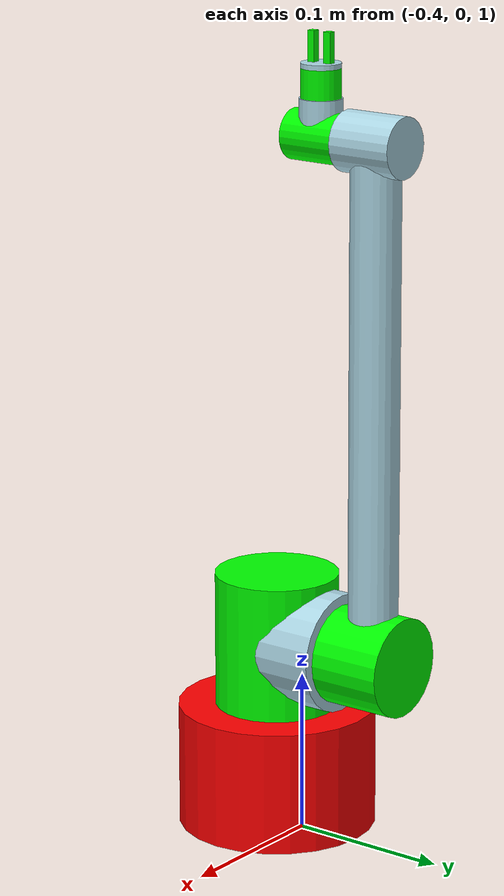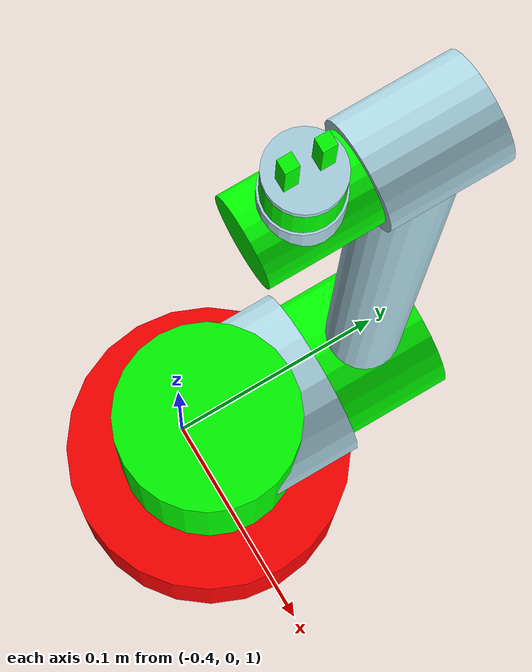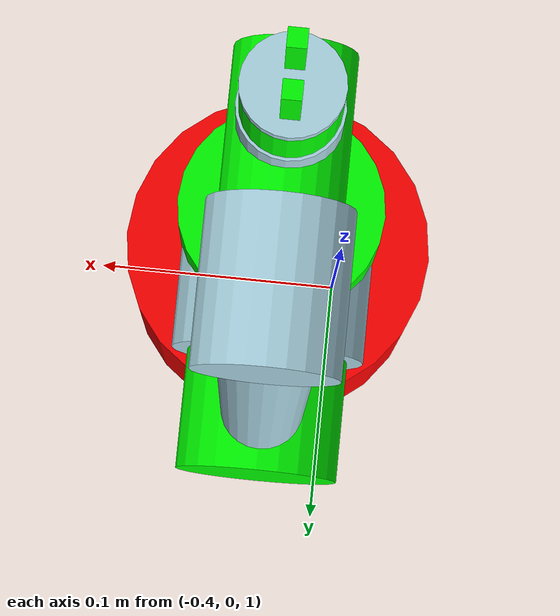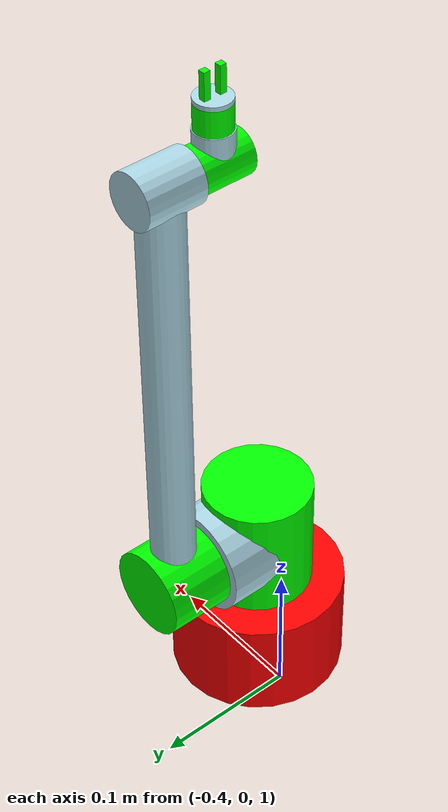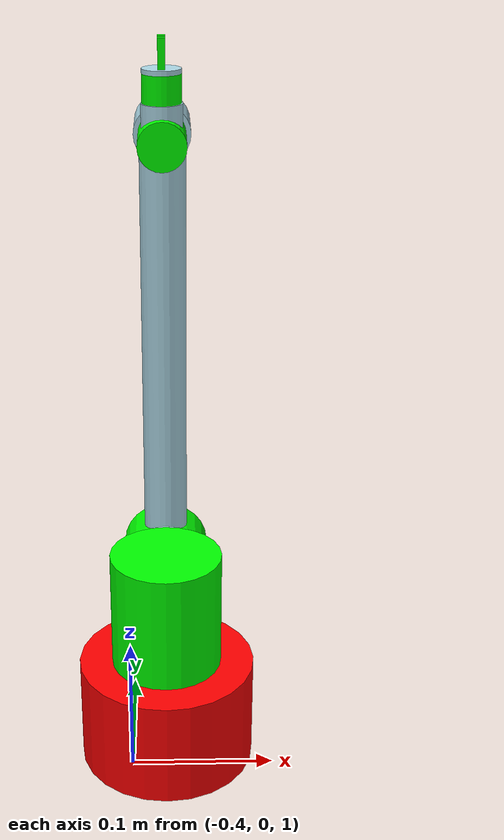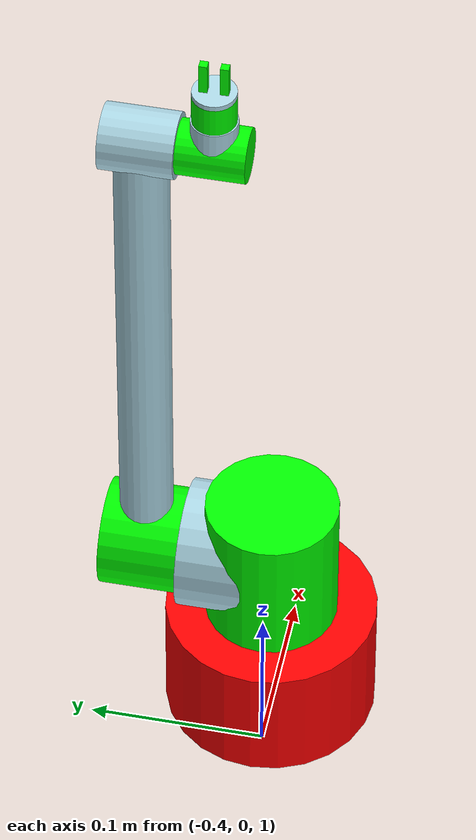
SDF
<?xml version="1.0" ?>
<sdf version="1.8">
  <world name="two_joint_arm_world">

    <!-- LIGHT -->

    <light type="directional" name="sun">
        <cast_shadows>true</cast_shadows>
        <pose>0 0 10 0 0 0</pose>
        <diffuse>0.8 0.8 0.8 1</diffuse>
        <specular>0.2 0.2 0.2 1</specular>
        <attenuation>
            <range>1000</range>
            <constant>0.9</constant>
            <linear>0.01</linear>
            <quadratic>0.001</quadratic>
        </attenuation>
        <direction>-0.5 0.1 -0.9</direction>
    </light>

                            <!--      MODELS      -->

                        <!--      Ground Plane      -->

    <!-- Ground Plane -->
    <model name="ground_plane">
      <static>true</static>
      <link name="link">
        <collision name="collision">
          <geometry>
            <plane>
              <normal>0 0 1</normal>
              <size>10 10</size>
            </plane>
          </geometry>
        </collision>
        <visual name="visual">
          <geometry>
            <plane>
              <normal>0 0 1</normal>
              <size>10 10</size>
            </plane>
          </geometry>

          <!-- COLOR!-->
          <material>
            <ambient>0.8 0.8 0.8 1</ambient>
            <diffuse>0.8 0.8 0.8 1</diffuse>
            <specular>0.5 0.5 0.5 1</specular>
          </material>
        </visual>
      </link>
    </model>

                            <!-- Robotic Arm Model -->

    <model name="two_joint_arm">

      <plugin
        filename="libignition-gazebo-joint-controller-system.so"
        name="ignition::gazebo::systems::JointController">
        <joint_name>joint0</joint_name>
        <topic>/two_joint_arm/joint0/pos_eff</topic>
      </plugin>

      <plugin
        filename="libignition-gazebo-joint-controller-system.so"
        name="ignition::gazebo::systems::JointController">
        <joint_name>joint1</joint_name>
        <topic>/two_joint_arm/joint1/pos_eff</topic>
      </plugin>

      <plugin
        filename="libignition-gazebo-joint-controller-system.so"
        name="ignition::gazebo::systems::JointController">
        <joint_name>joint2</joint_name>
        <topic>/two_joint_arm/joint2/pos_eff</topic>
      </plugin>

      <plugin
        filename="libignition-gazebo-joint-controller-system.so"
        name="ignition::gazebo::systems::JointController">
        <joint_name>right_finger_joint</joint_name>
        <topic>/two_joint_arm/right_finger_joint/pos_eff</topic>
      </plugin>

      <plugin
        filename="libignition-gazebo-joint-controller-system.so"
        name="ignition::gazebo::systems::JointController">
        <joint_name>left_finger_joint</joint_name>
        <topic>/two_joint_arm/left_finger_joint/pos_eff</topic>
      </plugin>

      <!-- LINK POSE  5Hz, dynamic-->

      <plugin
        filename="libignition-gazebo-pose-publisher-system.so"
        name="ignition::gazebo::systems::PosePublisher">
        <publish_link_pose>true</publish_link_pose>
        <update_frequency>0.5</update_frequency>
      </plugin>

      <!-- JOINT DATA IN RADIAN-->
      <plugin
        filename="libignition-gazebo-joint-state-publisher-system.so"
        name="ignition::gazebo::systems::JointStatePublisher">
      </plugin>

                                <!-- Arm Links -->

                                <!-- BASE LINK -->

      <!-- Base Link -->
      <link name="base_link">

        <pose>-0.375 0 1.0525 0 0 1.57079632679</pose>

        <collision name="base_collision">
          <geometry>
            <cylinder>
              <radius>0.06</radius> <!-- 12 cm diameter -->
              <length>0.075</length> <!-- 7.5 cm length -->
            </cylinder>
          </geometry>
        </collision>

        <visual name="base_visual">
          <geometry>
            <cylinder>
              <radius>0.06</radius>
              <length>0.075</length>
            </cylinder>
          </geometry>

          <!-- COLOR!-->
          <material>
            <ambient>1.0 0.0 0.0 1</ambient>
            <diffuse>1.0 0.0 0.0 1</diffuse>
            <specular>1.0 0.0 0.0 1</specular>
          </material>
        </visual>

        <inertial>
          <mass>100</mass>
          <inertia>
            <ixx>0.136875</ixx>
            <ixy>0</ixy>
            <ixz>0</ixz>
            <iyy>0.136875</iyy>
            <iyz>0</iyz>
            <izz>0.18</izz>
          </inertia>
        </inertial>
      </link>

                            <!-- Motor 0 link -->

      <link name="motor0">

        <pose relative_to="base_link">0 0 0.07875 0 0 0</pose>

        <!-- COLLISION -->
        <collision name="motor0_collision">
            <geometry>
                <cylinder>
                    <radius>0.0375</radius>
                    <length>0.0825</length>
                </cylinder>
            </geometry>
        </collision>

        <!-- VISUAL -->
        <visual name="motor0_visual">
            <geometry>
                <cylinder>
                    <radius>0.0375</radius> <!-- 6.5 cm diameter -->
                    <length>0.0825</length> <!-- 7.15 cm height -->
                </cylinder>
            </geometry>
            <material>
                <ambient>0.0 1.0 0.0 1</ambient> <!-- Green -->
                <diffuse>0.0 1.0 0.0 1</diffuse> <!-- Green -->
                <specular>1.0 1.0 1.0 1</specular>
            </material>
        </visual>
        <inertial>
            <mass>10</mass>
            <inertia>
                <ixx>0.0001709375</ixx>
                <ixy>0</ixy>
                <ixz>0</ixz>
                <iyy>0.0001709375</iyy>
                <iyz>0</iyz>
                <izz>0.0003125</izz>
              </inertia>
        </inertial>
      </link>

                            <!-- Motor 1 link -->

      <link name="motor1">

        <pose relative_to="segment0">0 0 0.04125 0 0 0</pose>

        <!-- COLLISION -->
        <collision name="motor1_collision">
            <geometry>
                <cylinder>
                    <radius>0.030</radius>
                    <length>0.045</length>
                </cylinder>
            </geometry>
        </collision>

        <!-- VISUAL -->
        <visual name="motor1_visual">
            <geometry>
                <cylinder>
                    <radius>0.030</radius> <!-- 4 cm diameter -->
                    <length>0.045</length> <!-- 3 cm length -->
                </cylinder>
            </geometry>
            <material>
                <ambient>0.0 1.0 0.0 1</ambient> <!-- Green -->
                <diffuse>0.0 1.0 0.0 1</diffuse> <!-- Green -->
                <specular>1.0 1.0 1.0 1</specular>
            </material>
        </visual>
        <inertial>
            <mass>1</mass>
            <inertia>
                <ixx>0.0002291666667</ixx>
                <ixy>0</ixy>
                <ixz>0</ixz>
                <iyy>0.0002291666667</iyy>
                <iyz>0</iyz>
                <izz>0.0001</izz>
            </inertia>
        </inertial>
      </link>

                              <!-- Motor 2 Link-->

      <link name="motor2">

        <pose relative_to="segment2">0 0 0.0390 0 0 0</pose>

        <!-- COLLISION -->
        <collision name="motor2_collision">
            <geometry>
                <cylinder>
                    <radius>0.015</radius>
                    <length>0.0375</length>
                </cylinder>
            </geometry>
        </collision>

        <!-- VISUAL -->
        <visual name="motor2_visual">
            <geometry>
                <cylinder>
                    <radius>0.015</radius> <!-- 2 cm diameter -->
                    <length>0.0375</length> <!-- 2.5 cm height -->
                </cylinder>
            </geometry>
            <material>
                <ambient>0.0 1.0 0.0 1</ambient> <!-- Green -->
                <diffuse>0.0 1.0 0.0 1</diffuse> <!-- Green -->
                <specular>1.0 1.0 1.0 1</specular>
            </material>
        </visual>
        <inertial>
          <mass>0.1</mass>
          <inertia>
              <ixx>0.00013125</ixx>
              <ixy>0</ixy>
              <ixz>0</ixz>
              <iyy>0.00013125</iyy>
              <iyz>0</iyz>
              <izz>0.0000025</izz>
          </inertia>
        </inertial>
      </link>

                            <!-- Motor 4 Link-->

      <link name="motor4">

        <pose relative_to="segment5">0 0 0.015 0 0 0</pose>

        <!-- COLLISION -->
        <collision name="motor4_collision">
            <geometry>
                <cylinder>
                    <radius>0.012</radius>
                    <length>0.0195</length>
                </cylinder>
            </geometry>
        </collision>

        <!-- VISUAL -->
        <visual name="motor4_visual">
            <geometry>
                <cylinder>
                    <radius>0.012</radius> <!-- 1.6 cm diameter -->
                    <length>0.0195</length> <!-- 1.3 cm height -->
                </cylinder>
            </geometry>
            <material>
                <ambient>0.0 1.0 0.0 1</ambient> <!-- Green -->
                <diffuse>0.0 1.0 0.0 1</diffuse> <!-- Green -->
                <specular>1.0 1.0 1.0 1</specular>
            </material>
        </visual>
        <inertial>
          <mass>0.1</mass>
          <inertia>
              <ixx>0.00013125</ixx>
              <ixy>0</ixy>
              <ixz>0</ixz>
              <iyy>0.00013125</iyy>
              <iyz>0</iyz>
              <izz>0.0000025</izz>
          </inertia>
        </inertial>
      </link>

                    <!-- CUSTOM SIMPLE GRIPPER -->

                      <!-- right finger Link -->

      <link name="right_finger">

        <pose relative_to="segment6">0.005625 0 0.00975 0 0 0</pose> <!-- Adjusted Z to account for half the height of the cuboid -->

        <!-- COLLISION -->
        <collision name="right_finger_collision">
            <geometry>
                <box>
                    <size>0.0045 0.0045 0.0195</size> <!-- 4 times taller than wide -->
                </box>
            </geometry>
        </collision>

        <!-- VISUAL -->
        <visual name="right_finger_visual">
            <geometry>
                <box>
                    <size>0.0045 0.0045 0.0195</size>
                </box>
            </geometry>
            <material>
                <ambient>0.0 1.0 0.0 1</ambient> <!-- Green -->
                <diffuse>0.0 1.0 0.0 1</diffuse> <!-- Green -->
                <specular>1.0 1.0 1.0 1</specular>
            </material>
        </visual>

        <inertial>
          <mass>0.1</mass>
          <!-- The inertia tensor values would need to be recalculated for the box shape. The values below are placeholders. -->
          <inertia>
              <ixx>0.00013125</ixx>
              <ixy>0</ixy>
              <ixz>0</ixz>
              <iyy>0.00013125</iyy>
              <iyz>0</iyz>
              <izz>0.0000025</izz>
          </inertia>
        </inertial>
      </link>

                      <!-- left finger Link -->

      <link name="left_finger">

        <pose relative_to="segment6">-0.005625 0 0.00975 0 0 0</pose> <!-- Adjusted Z to account for half the height of the cuboid -->

        <!-- COLLISION -->
        <collision name="left_finger_collision">
            <geometry>
                <box>
                  <size>0.0045 0.0045 0.0195</size> <!-- 4 times taller than wide -->
                </box>
            </geometry>
        </collision>

        <!-- VISUAL -->
        <visual name="left_finger_visual">
            <geometry>
                <box>
                  <size>0.0045 0.0045 0.0195</size>
                </box>
            </geometry>
            <material>
                <ambient>0.0 1.0 0.0 1</ambient> <!-- Green -->
                <diffuse>0.0 1.0 0.0 1</diffuse> <!-- Green -->
                <specular>1.0 1.0 1.0 1</specular>
            </material>
        </visual>

        <inertial>
          <mass>0.1</mass>
          <!-- The inertia tensor values would need to be recalculated for the box shape. The values below are placeholders. -->
          <inertia>
              <ixx>0.00013125</ixx>
              <ixy>0</ixy>
              <ixz>0</ixz>
              <iyy>0.00013125</iyy>
              <iyz>0</iyz>
              <izz>0.0000025</izz>
          </inertia>
        </inertial>
      </link>

                          <!-- Segment 0 -->

      <link name="segment0">

        <pose relative_to="motor0">0.03 0 0 0 1.57079632679 0</pose>

        <!-- COLLISION -->
        <collision name="segment0 collision">
            <geometry>
                <cylinder>
                    <radius>0.0360</radius>
                    <length>0.0375</length>
                </cylinder>
            </geometry>
        </collision>

        <!-- VISUAL -->
        <visual name="segment0 visual">
            <geometry>
                <cylinder>
                    <radius>0.0360</radius> <!-- 7.2cm diameter -->
                    <length>0.0375</length> <!-- 3.75 cm length -->
                </cylinder>
            </geometry>
            <material>
                <ambient>0.678 0.847 0.902 1</ambient> <!-- Light Blue -->
                <diffuse>0.678 0.847 0.902 1</diffuse>
                <specular>1.0 1.0 1.0 1</specular>
            </material>
        </visual>
        <inertial>
          <mass>0.1</mass>
          <inertia>
              <ixx>0.00013125</ixx>
              <ixy>0</ixy>
              <ixz>0</ixz>
              <iyy>0.00013125</iyy>
              <iyz>0</iyz>
              <izz>0.0000025</izz>
          </inertia>
        </inertial>
      </link>

                            <!-- first segment-->

      <link name="segment1">

        <pose relative_to="motor1">-0.15 0 0 0 -1.57079632679 0</pose>

        <!-- COLLISION -->
        <collision name="segment1 collision">
            <geometry>
                <cylinder>
                    <radius>0.015</radius>
                    <length>0.3</length>
                </cylinder>
            </geometry>
        </collision>

        <!-- VISUAL -->
        <visual name="segment1 visual">
            <geometry>
                <cylinder>
                    <radius>0.015</radius> <!-- 3 cm diameter -->
                    <length>0.3</length> <!-- 22.5 cm height -->
                </cylinder>
            </geometry>
            <material>
                <ambient>0.678 0.847 0.902 1</ambient> <!-- Light Blue -->
                <diffuse>0.678 0.847 0.902 1</diffuse>
                <specular>1.0 1.0 1.0 1</specular>
            </material>
        </visual>
        <inertial>
          <mass>0.1</mass>
          <inertia>
              <ixx>0.00013125</ixx>
              <ixy>0</ixy>
              <ixz>0</ixz>
              <iyy>0.00013125</iyy>
              <iyz>0</iyz>
              <izz>0.0000025</izz>
          </inertia>
        </inertial>
      </link>

                                  <!-- second segment-->

      <link name="segment2">

        <pose relative_to="segment1">0 0 0.159 0 -1.57079632679 0</pose>

        <!-- COLLISION -->
        <collision name="segment2_collision">
            <geometry>
                <cylinder>
                    <radius>0.0180</radius>
                    <length>0.0405</length>
                </cylinder>
            </geometry>
        </collision>

        <!-- VISUAL -->
        <visual name="segment2_visual">
            <geometry>
                <cylinder>
                    <radius>0.0180</radius> <!-- 3.6 cm diameter -->
                    <length>0.0405</length> <!-- 4.05 cm height -->
                </cylinder>
            </geometry>
            <material>
                <ambient>0.678 0.847 0.902 1</ambient> <!-- Light Blue -->
                <diffuse>0.678 0.847 0.902 1</diffuse>
                <specular>1.0 1.0 1.0 1</specular>
            </material>
        </visual>
        <inertial>
          <mass>0.1</mass>
          <inertia>
              <ixx>0.00013125</ixx>
              <ixy>0</ixy>
              <ixz>0</ixz>
              <iyy>0.00013125</iyy>
              <iyz>0</iyz>
              <izz>0.0000025</izz>
          </inertia>
        </inertial>
      </link>

                            <!-- fifth segment-->

      <link name="segment5">

        <pose relative_to="motor2">0.015 0 0 0 1.57079632679 0</pose>

        <!-- COLLISION -->
        <collision name="segment5_collision">
            <geometry>
                <cylinder>
                    <radius>0.01275</radius>
                    <length>0.015</length>
                </cylinder>
            </geometry>
        </collision>

        <!-- VISUAL -->
        <visual name="segment5_visual">
            <geometry>
                <cylinder>
                    <radius>0.01275</radius> <!-- 1.7 cm diameter -->
                    <length>0.015</length> <!-- 0.5 cm height -->
                </cylinder>
            </geometry>
            <material>
                <ambient>0.678 0.847 0.902 1</ambient> <!-- Light Blue -->
                <diffuse>0.678 0.847 0.902 1</diffuse>
                <specular>1.0 1.0 1.0 1</specular>
            </material>
        </visual>
        <inertial>
          <mass>0.1</mass>
          <inertia>
              <ixx>0.00013125</ixx>
              <ixy>0</ixy>
              <ixz>0</ixz>
              <iyy>0.00013125</iyy>
              <iyz>0</iyz>
              <izz>0.0000025</izz>
          </inertia>
        </inertial>
      </link>

                            <!-- sixth segment-->

      <link name="segment6">

        <pose relative_to="motor4">0 0 0.01125 0 0 0</pose>

        <!-- COLLISION -->
        <collision name="segment6_collision">
            <geometry>
                <cylinder>
                    <radius>0.012</radius>
                    <length>0.003</length>
                </cylinder>
            </geometry>
        </collision>

        <!-- VISUAL -->
        <visual name="segment6_visual">
            <geometry>
                <cylinder>
                    <radius>0.012</radius> <!-- 1.2 cm diameter -->
                    <length>0.003</length> <!-- 0.3 cm height -->
                </cylinder>
            </geometry>
            <material>
                <ambient>0.678 0.847 0.902 1</ambient> <!-- Light Blue -->
                <diffuse>0.678 0.847 0.902 1</diffuse>
                <specular>1.0 1.0 1.0 1</specular>
            </material>
        </visual>
        <inertial>
          <mass>0.1</mass>
          <inertia>
              <ixx>0.00013125</ixx>
              <ixy>0</ixy>
              <ixz>0</ixz>
              <iyy>0.00013125</iyy>
              <iyz>0</iyz>
              <izz>0.0000025</izz>
          </inertia>
        </inertial>
      </link>

                        <!--      JOINTS      -->

                            <!-- revolute joint 0  -->

      <joint name="joint0" type="revolute">
         <parent>base_link</parent>
          <child>motor0</child>
          <axis>
              <dynamics>
                <damping>0.000000</damping>
                <friction>0.000000</friction>
              </dynamics>
              <xyz>0 0 1</xyz> <!-- Z-axis rotation -->
              <limit>
                <lower>-3.141592</lower> <!-- -180 degrees -->
                <upper>3.141592</upper>  <!-- 180 degrees -->
                <effort>1e6</effort>
              </limit>
          </axis>
          <pose>0 0 0.07875 0 0 0</pose>
      </joint>

                            <!-- revolute joint 1  -->

      <joint name="joint1" type="revolute">
        <parent>segment0</parent>
         <child>motor1</child>
         <axis>
             <dynamics>
               <friction>0.000000</friction>
               <damping>0.000000</damping>
             </dynamics>
             <xyz>0 0 1</xyz>
             <limit>
                <lower>-1.300000</lower>
                <upper>1.300000</upper>
                <effort>1e6</effort>
             </limit>
         </axis>
         <pose>0 0 0.04125 0 0 0</pose>
      </joint>

                            <!-- revolute joint 2  -->

      <joint name="joint2" type="revolute">
        <parent>segment2</parent>
         <child>motor2</child>
         <axis>
             <dynamics>
               <friction>0.000000</friction>
               <damping>0.000000</damping>
             </dynamics>
             <xyz>0 0 1</xyz>
             <limit>
                <lower>-1.300000</lower>
                <upper>1.300000</upper>
                <effort>1e6</effort>
             </limit>
         </axis>
         <pose>0 0 0.0390 0 0 0</pose>
      </joint>

                            <!-- revolute joint 6  -->

      <joint name="joint6" type="revolute">
        <parent>segment5</parent>
         <child>motor4</child>
         <axis>
             <dynamics>
               <friction>0.000000</friction>
               <damping>0.000000</damping>
             </dynamics>
             <xyz>0 0 1</xyz>
             <limit>
                <lower>-1.300000</lower>
                <upper>1.300000</upper>
                <effort>1e6</effort>
             </limit>
         </axis>
         <pose>0 0 0.015 0 0 0</pose>
      </joint>

                            <!-- right finger prismatic joint  -->

      <joint name="right_finger_joint" type="prismatic">

         <parent>segment6</parent>
         <child>right_finger</child>

         <axis>
             <dynamics>
               <friction>0.000000</friction>
               <damping>0.000000</damping>
             </dynamics>
             <xyz>1 0 0</xyz>
             <limit>
                <lower>0</lower>
                <upper>0.00375</upper>
                <effort>1e6</effort>
             </limit>
         </axis>
         <pose>0.005625 0 0.00975 0 0 3.14159265359</pose>
      </joint>

                            <!-- left finger prismatic joint  -->

      <joint name="left_finger_joint" type="prismatic">

         <parent>segment6</parent>
         <child>left_finger</child>

         <axis>
             <dynamics>
               <friction>0.000000</friction>
               <damping>0.000000</damping>
             </dynamics>
             <xyz>1 0 0</xyz>
             <limit>
                <lower>0</lower>
                <upper>0.00375</upper>
                <effort>1e6</effort>
             </limit>
         </axis>
         <pose>-0.005625 0 0.00975 0 0 0</pose>
      </joint>

                        <!--      FIXED JOINTS      -->

                            <!-- fixed joint 0  -->

      <joint name="fixed0" type="fixed">
        <parent>motor0</parent>
        <child>segment0</child>
        <pose>0.03 0 0 0 1.57079632679 0</pose>
      </joint>

                            <!-- fixed joint 1  -->

      <joint name="fixed1" type="fixed">
        <parent>motor1</parent>
        <child>segment1</child>
        <pose>-0.15 0 0 0 -1.57079632679 0</pose>
      </joint>

                            <!-- fixed joint 2  -->

      <joint name="fixed2" type="fixed">
        <parent>segment1</parent>
        <child>segment2</child>
        <pose>0 0 0.159 0 -1.57079632679 0</pose>
      </joint>

                            <!-- fixed joint 5 -->

      <joint name="fixed5" type="fixed">
        <parent>motor2</parent>
        <child>segment5</child>
        <pose>0.015 0 0 0 1.57079632679 0</pose>
      </joint>

                            <!-- fixed joint 6 -->

      <joint name="fixed6" type="fixed">
        <parent>motor4</parent>
        <child>segment6</child>
        <pose>0 0 0.01125 0 0 0</pose>
      </joint>

    </model>
  </world>
</sdf>
